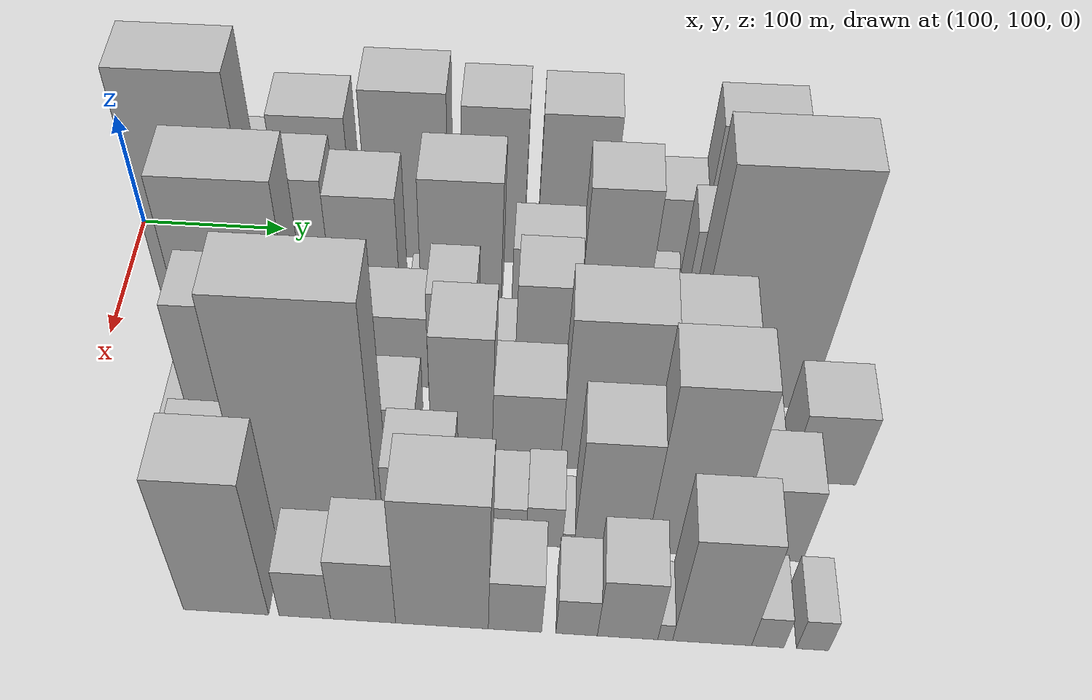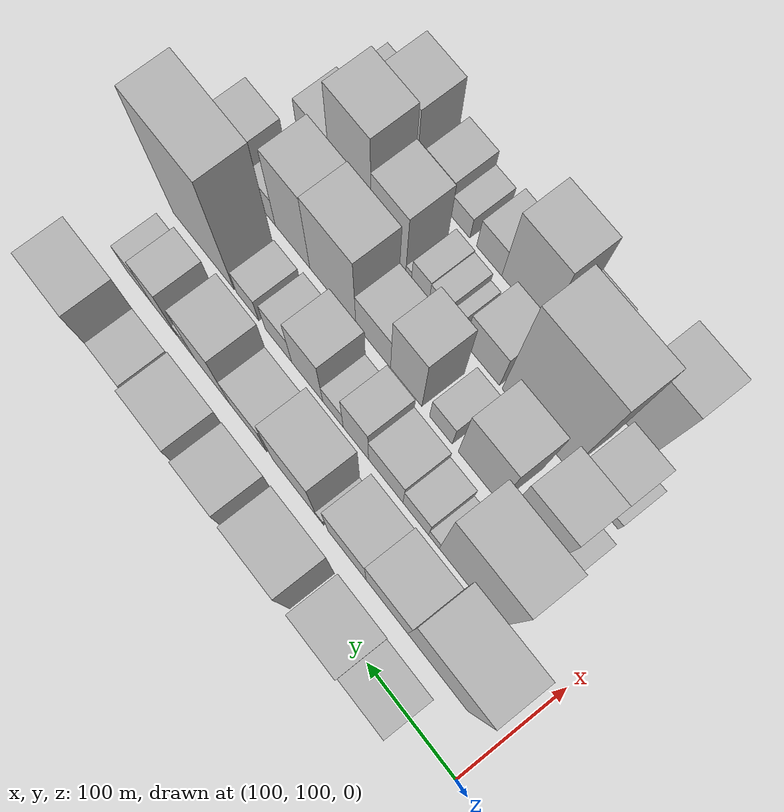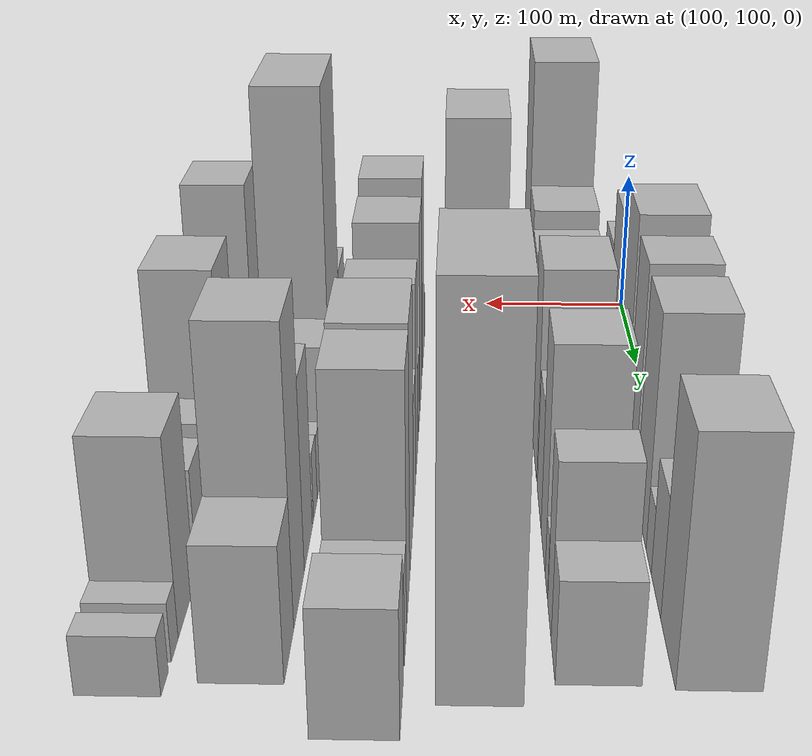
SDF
<sdf version="1.6">
 <world name="default">
  <model name="building_29">
   <static>1</static>
   <pose>100.0000 180.1995 0 0.000000 0.000000 0.000000</pose>
   <link name="link">
    <pose>0 0 43.50 0 0 0</pose>
    <collision name="collision"><geometry><box><size>40.0000 47.5425 87.0000</size></box></geometry></collision>
    <visual name="visual">
     <cast_shadows>0</cast_shadows>
     <geometry><box><size>40.0000 47.5425 87.0000</size></box></geometry>
     <material>
      <script>
       <uri>model://HANNAS_wall/materials/scripts</uri>
       <uri>model://HANNAS_wall/materials/textures</uri>
       <name>vrc/HANNAS_wall</name>
      </script>
     </material>
    </visual>
   </link>
  </model>
  <model name="building_30">
   <static>1</static>
   <pose>100.0000 228.5666 0 0.000000 0.000000 0.000000</pose>
   <link name="link">
    <pose>0 0 63.00 0 0 0</pose>
    <collision name="collision"><geometry><box><size>40.0000 49.1916 126.0000</size></box></geometry></collision>
    <visual name="visual">
     <cast_shadows>0</cast_shadows>
     <geometry><box><size>40.0000 49.1916 126.0000</size></box></geometry>
     <material>
      <script>
       <uri>model://HANNAS_wall/materials/scripts</uri>
       <uri>model://HANNAS_wall/materials/textures</uri>
       <name>vrc/HANNAS_wall</name>
      </script>
     </material>
    </visual>
   </link>
  </model>
  <model name="building_31">
   <static>1</static>
   <pose>100.0000 290.3817 0 0.000000 0.000000 0.000000</pose>
   <link name="link">
    <pose>0 0 75.00 0 0 0</pose>
    <collision name="collision"><geometry><box><size>40.0000 54.4385 150.0000</size></box></geometry></collision>
    <visual name="visual">
     <cast_shadows>0</cast_shadows>
     <geometry><box><size>40.0000 54.4385 150.0000</size></box></geometry>
     <material>
      <script>
       <uri>model://HANNAS_wall/materials/scripts</uri>
       <uri>model://HANNAS_wall/materials/textures</uri>
       <name>vrc/HANNAS_wall</name>
      </script>
     </material>
    </visual>
   </link>
  </model>
  <model name="building_32">
   <static>1</static>
   <pose>100.0000 347.7586 0 0.000000 0.000000 0.000000</pose>
   <link name="link">
    <pose>0 0 70.50 0 0 0</pose>
    <collision name="collision"><geometry><box><size>40.0000 42.3155 141.0000</size></box></geometry></collision>
    <visual name="visual">
     <cast_shadows>0</cast_shadows>
     <geometry><box><size>40.0000 42.3155 141.0000</size></box></geometry>
     <material>
      <script>
       <uri>model://HANNAS_wall/materials/scripts</uri>
       <uri>model://HANNAS_wall/materials/textures</uri>
       <name>vrc/HANNAS_wall</name>
      </script>
     </material>
    </visual>
   </link>
  </model>
  <model name="building_33">
   <static>1</static>
   <pose>100.0000 402.1196 0 0.000000 0.000000 0.000000</pose>
   <link name="link">
    <pose>0 0 69.00 0 0 0</pose>
    <collision name="collision"><geometry><box><size>40.0000 48.4064 138.0000</size></box></geometry></collision>
    <visual name="visual">
     <cast_shadows>0</cast_shadows>
     <geometry><box><size>40.0000 48.4064 138.0000</size></box></geometry>
     <material>
      <script>
       <uri>model://HANNAS_wall/materials/scripts</uri>
       <uri>model://HANNAS_wall/materials/textures</uri>
       <name>vrc/HANNAS_wall</name>
      </script>
     </material>
    </visual>
   </link>
  </model>
  <model name="building_34">
   <static>1</static>
   <pose>100.0000 437.7111 0 0.000000 0.000000 0.000000</pose>
   <link name="link">
    <pose>0 0 19.50 0 0 0</pose>
    <collision name="collision"><geometry><box><size>40.0000 22.7765 39.0000</size></box></geometry></collision>
    <visual name="visual">
     <cast_shadows>0</cast_shadows>
     <geometry><box><size>40.0000 22.7765 39.0000</size></box></geometry>
     <material>
      <script>
       <uri>model://HANNAS_wall/materials/scripts</uri>
       <uri>model://HANNAS_wall/materials/textures</uri>
       <name>vrc/HANNAS_wall</name>
      </script>
     </material>
    </visual>
   </link>
  </model>
  <model name="building_35">
   <static>1</static>
   <pose>100.0000 468.4505 0 0.000000 0.000000 0.000000</pose>
   <link name="link">
    <pose>0 0 34.50 0 0 0</pose>
    <collision name="collision"><geometry><box><size>40.0000 38.7024 69.0000</size></box></geometry></collision>
    <visual name="visual">
     <cast_shadows>0</cast_shadows>
     <geometry><box><size>40.0000 38.7024 69.0000</size></box></geometry>
     <material>
      <script>
       <uri>model://HANNAS_wall/materials/scripts</uri>
       <uri>model://HANNAS_wall/materials/textures</uri>
       <name>vrc/HANNAS_wall</name>
      </script>
     </material>
    </visual>
   </link>
  </model>
  <model name="building_36">
   <static>1</static>
   <pose>100.0000 514.6712 0 0.000000 0.000000 0.000000</pose>
   <link name="link">
    <pose>0 0 67.50 0 0 0</pose>
    <collision name="collision"><geometry><box><size>40.0000 53.7389 135.0000</size></box></geometry></collision>
    <visual name="visual">
     <cast_shadows>0</cast_shadows>
     <geometry><box><size>40.0000 53.7389 135.0000</size></box></geometry>
     <material>
      <script>
       <uri>model://HANNAS_wall/materials/scripts</uri>
       <uri>model://HANNAS_wall/materials/textures</uri>
       <name>vrc/HANNAS_wall</name>
      </script>
     </material>
    </visual>
   </link>
  </model>
  <model name="building_75">
   <static>1</static>
   <pose>155.0000 164.4124 0 0.000000 0.000000 0.000000</pose>
   <link name="link">
    <pose>0 0 103.50 0 0 0</pose>
    <collision name="collision"><geometry><box><size>40.0000 67.5657 207.0000</size></box></geometry></collision>
    <visual name="visual">
     <cast_shadows>0</cast_shadows>
     <geometry><box><size>40.0000 67.5657 207.0000</size></box></geometry>
     <material>
      <script>
       <uri>model://HANNAS_wall/materials/scripts</uri>
       <uri>model://HANNAS_wall/materials/textures</uri>
       <name>vrc/HANNAS_wall</name>
      </script>
     </material>
    </visual>
   </link>
  </model>
  <model name="building_76">
   <static>1</static>
   <pose>155.0000 221.9560 0 0.000000 0.000000 0.000000</pose>
   <link name="link">
    <pose>0 0 63.00 0 0 0</pose>
    <collision name="collision"><geometry><box><size>40.0000 47.5215 126.0000</size></box></geometry></collision>
    <visual name="visual">
     <cast_shadows>0</cast_shadows>
     <geometry><box><size>40.0000 47.5215 126.0000</size></box></geometry>
     <material>
      <script>
       <uri>model://HANNAS_wall/materials/scripts</uri>
       <uri>model://HANNAS_wall/materials/textures</uri>
       <name>vrc/HANNAS_wall</name>
      </script>
     </material>
    </visual>
   </link>
  </model>
  <model name="building_77">
   <static>1</static>
   <pose>155.0000 268.0033 0 0.000000 0.000000 0.000000</pose>
   <link name="link">
    <pose>0 0 57.00 0 0 0</pose>
    <collision name="collision"><geometry><box><size>40.0000 44.5732 114.0000</size></box></geometry></collision>
    <visual name="visual">
     <cast_shadows>0</cast_shadows>
     <geometry><box><size>40.0000 44.5732 114.0000</size></box></geometry>
     <material>
      <script>
       <uri>model://HANNAS_wall/materials/scripts</uri>
       <uri>model://HANNAS_wall/materials/textures</uri>
       <name>vrc/HANNAS_wall</name>
      </script>
     </material>
    </visual>
   </link>
  </model>
  <model name="building_78">
   <static>1</static>
   <pose>155.0000 299.6973 0 0.000000 0.000000 0.000000</pose>
   <link name="link">
    <pose>0 0 10.50 0 0 0</pose>
    <collision name="collision"><geometry><box><size>40.0000 8.8148 21.0000</size></box></geometry></collision>
    <visual name="visual">
     <cast_shadows>0</cast_shadows>
     <geometry><box><size>40.0000 8.8148 21.0000</size></box></geometry>
     <material>
      <script>
       <uri>model://HANNAS_wall/materials/scripts</uri>
       <uri>model://HANNAS_wall/materials/textures</uri>
       <name>vrc/HANNAS_wall</name>
      </script>
     </material>
    </visual>
   </link>
  </model>
  <model name="building_79">
   <static>1</static>
   <pose>155.0000 330.1746 0 0.000000 0.000000 0.000000</pose>
   <link name="link">
    <pose>0 0 66.00 0 0 0</pose>
    <collision name="collision"><geometry><box><size>40.0000 52.1398 132.0000</size></box></geometry></collision>
    <visual name="visual">
     <cast_shadows>0</cast_shadows>
     <geometry><box><size>40.0000 52.1398 132.0000</size></box></geometry>
     <material>
      <script>
       <uri>model://HANNAS_wall/materials/scripts</uri>
       <uri>model://HANNAS_wall/materials/textures</uri>
       <name>vrc/HANNAS_wall</name>
      </script>
     </material>
    </visual>
   </link>
  </model>
  <model name="building_80">
   <static>1</static>
   <pose>155.0000 385.5534 0 0.000000 0.000000 0.000000</pose>
   <link name="link">
    <pose>0 0 37.50 0 0 0</pose>
    <collision name="collision"><geometry><box><size>40.0000 44.6178 75.0000</size></box></geometry></collision>
    <visual name="visual">
     <cast_shadows>0</cast_shadows>
     <geometry><box><size>40.0000 44.6178 75.0000</size></box></geometry>
     <material>
      <script>
       <uri>model://HANNAS_wall/materials/scripts</uri>
       <uri>model://HANNAS_wall/materials/textures</uri>
       <name>vrc/HANNAS_wall</name>
      </script>
     </material>
    </visual>
   </link>
  </model>
  <model name="building_81">
   <static>1</static>
   <pose>155.0000 429.4478 0 0.000000 0.000000 0.000000</pose>
   <link name="link">
    <pose>0 0 66.00 0 0 0</pose>
    <collision name="collision"><geometry><box><size>40.0000 43.1711 132.0000</size></box></geometry></collision>
    <visual name="visual">
     <cast_shadows>0</cast_shadows>
     <geometry><box><size>40.0000 43.1711 132.0000</size></box></geometry>
     <material>
      <script>
       <uri>model://HANNAS_wall/materials/scripts</uri>
       <uri>model://HANNAS_wall/materials/textures</uri>
       <name>vrc/HANNAS_wall</name>
      </script>
     </material>
    </visual>
   </link>
  </model>
  <model name="building_82">
   <static>1</static>
   <pose>155.0000 461.4262 0 0.000000 0.000000 0.000000</pose>
   <link name="link">
    <pose>0 0 18.00 0 0 0</pose>
    <collision name="collision"><geometry><box><size>40.0000 20.7857 36.0000</size></box></geometry></collision>
    <visual name="visual">
     <cast_shadows>0</cast_shadows>
     <geometry><box><size>40.0000 20.7857 36.0000</size></box></geometry>
     <material>
      <script>
       <uri>model://HANNAS_wall/materials/scripts</uri>
       <uri>model://HANNAS_wall/materials/textures</uri>
       <name>vrc/HANNAS_wall</name>
      </script>
     </material>
    </visual>
   </link>
  </model>
  <model name="building_83">
   <static>1</static>
   <pose>155.0000 490.3712 0 0.000000 0.000000 0.000000</pose>
   <link name="link">
    <pose>0 0 49.50 0 0 0</pose>
    <collision name="collision"><geometry><box><size>40.0000 31.1045 99.0000</size></box></geometry></collision>
    <visual name="visual">
     <cast_shadows>0</cast_shadows>
     <geometry><box><size>40.0000 31.1045 99.0000</size></box></geometry>
     <material>
      <script>
       <uri>model://HANNAS_wall/materials/scripts</uri>
       <uri>model://HANNAS_wall/materials/textures</uri>
       <name>vrc/HANNAS_wall</name>
      </script>
     </material>
    </visual>
   </link>
  </model>
  <model name="building_84">
   <static>1</static>
   <pose>155.0000 522.3823 0 0.000000 0.000000 0.000000</pose>
   <link name="link">
    <pose>0 0 28.50 0 0 0</pose>
    <collision name="collision"><geometry><box><size>40.0000 32.9177 57.0000</size></box></geometry></collision>
    <visual name="visual">
     <cast_shadows>0</cast_shadows>
     <geometry><box><size>40.0000 32.9177 57.0000</size></box></geometry>
     <material>
      <script>
       <uri>model://HANNAS_wall/materials/scripts</uri>
       <uri>model://HANNAS_wall/materials/textures</uri>
       <name>vrc/HANNAS_wall</name>
      </script>
     </material>
    </visual>
   </link>
  </model>
  <model name="building_125">
   <static>1</static>
   <pose>210.0000 196.2581 0 0.000000 0.000000 0.000000</pose>
   <link name="link">
    <pose>0 0 90.00 0 0 0</pose>
    <collision name="collision"><geometry><box><size>40.0000 69.4284 180.0000</size></box></geometry></collision>
    <visual name="visual">
     <cast_shadows>0</cast_shadows>
     <geometry><box><size>40.0000 69.4284 180.0000</size></box></geometry>
     <material>
      <script>
       <uri>model://HANNAS_wall/materials/scripts</uri>
       <uri>model://HANNAS_wall/materials/textures</uri>
       <name>vrc/HANNAS_wall</name>
      </script>
     </material>
    </visual>
   </link>
  </model>
  <model name="building_126">
   <static>1</static>
   <pose>210.0000 237.1625 0 0.000000 0.000000 0.000000</pose>
   <link name="link">
    <pose>0 0 13.50 0 0 0</pose>
    <collision name="collision"><geometry><box><size>40.0000 12.3806 27.0000</size></box></geometry></collision>
    <visual name="visual">
     <cast_shadows>0</cast_shadows>
     <geometry><box><size>40.0000 12.3806 27.0000</size></box></geometry>
     <material>
      <script>
       <uri>model://HANNAS_wall/materials/scripts</uri>
       <uri>model://HANNAS_wall/materials/textures</uri>
       <name>vrc/HANNAS_wall</name>
      </script>
     </material>
    </visual>
   </link>
  </model>
  <model name="building_127">
   <static>1</static>
   <pose>210.0000 258.1471 0 0.000000 0.000000 0.000000</pose>
   <link name="link">
    <pose>0 0 27.00 0 0 0</pose>
    <collision name="collision"><geometry><box><size>40.0000 29.5886 54.0000</size></box></geometry></collision>
    <visual name="visual">
     <cast_shadows>0</cast_shadows>
     <geometry><box><size>40.0000 29.5886 54.0000</size></box></geometry>
     <material>
      <script>
       <uri>model://HANNAS_wall/materials/scripts</uri>
       <uri>model://HANNAS_wall/materials/textures</uri>
       <name>vrc/HANNAS_wall</name>
      </script>
     </material>
    </visual>
   </link>
  </model>
  <model name="building_128">
   <static>1</static>
   <pose>210.0000 293.1214 0 0.000000 0.000000 0.000000</pose>
   <link name="link">
    <pose>0 0 34.50 0 0 0</pose>
    <collision name="collision"><geometry><box><size>40.0000 40.3600 69.0000</size></box></geometry></collision>
    <visual name="visual">
     <cast_shadows>0</cast_shadows>
     <geometry><box><size>40.0000 40.3600 69.0000</size></box></geometry>
     <material>
      <script>
       <uri>model://HANNAS_wall/materials/scripts</uri>
       <uri>model://HANNAS_wall/materials/textures</uri>
       <name>vrc/HANNAS_wall</name>
      </script>
     </material>
    </visual>
   </link>
  </model>
  <model name="building_129">
   <static>1</static>
   <pose>210.0000 328.3047 0 0.000000 0.000000 0.000000</pose>
   <link name="link">
    <pose>0 0 46.50 0 0 0</pose>
    <collision name="collision"><geometry><box><size>40.0000 30.0066 93.0000</size></box></geometry></collision>
    <visual name="visual">
     <cast_shadows>0</cast_shadows>
     <geometry><box><size>40.0000 30.0066 93.0000</size></box></geometry>
     <material>
      <script>
       <uri>model://HANNAS_wall/materials/scripts</uri>
       <uri>model://HANNAS_wall/materials/textures</uri>
       <name>vrc/HANNAS_wall</name>
      </script>
     </material>
    </visual>
   </link>
  </model>
  <model name="building_130">
   <static>1</static>
   <pose>210.0000 355.5688 0 0.000000 0.000000 0.000000</pose>
   <link name="link">
    <pose>0 0 22.50 0 0 0</pose>
    <collision name="collision"><geometry><box><size>40.0000 24.5215 45.0000</size></box></geometry></collision>
    <visual name="visual">
     <cast_shadows>0</cast_shadows>
     <geometry><box><size>40.0000 24.5215 45.0000</size></box></geometry>
     <material>
      <script>
       <uri>model://HANNAS_wall/materials/scripts</uri>
       <uri>model://HANNAS_wall/materials/textures</uri>
       <name>vrc/HANNAS_wall</name>
      </script>
     </material>
    </visual>
   </link>
  </model>
  <model name="building_131">
   <static>1</static>
   <pose>210.0000 386.7142 0 0.000000 0.000000 0.000000</pose>
   <link name="link">
    <pose>0 0 52.50 0 0 0</pose>
    <collision name="collision"><geometry><box><size>40.0000 37.7694 105.0000</size></box></geometry></collision>
    <visual name="visual">
     <cast_shadows>0</cast_shadows>
     <geometry><box><size>40.0000 37.7694 105.0000</size></box></geometry>
     <material>
      <script>
       <uri>model://HANNAS_wall/materials/scripts</uri>
       <uri>model://HANNAS_wall/materials/textures</uri>
       <name>vrc/HANNAS_wall</name>
      </script>
     </material>
    </visual>
   </link>
  </model>
  <model name="building_132">
   <static>1</static>
   <pose>210.0000 421.9209 0 0.000000 0.000000 0.000000</pose>
   <link name="link">
    <pose>0 0 30.00 0 0 0</pose>
    <collision name="collision"><geometry><box><size>40.0000 32.6440 60.0000</size></box></geometry></collision>
    <visual name="visual">
     <cast_shadows>0</cast_shadows>
     <geometry><box><size>40.0000 32.6440 60.0000</size></box></geometry>
     <material>
      <script>
       <uri>model://HANNAS_wall/materials/scripts</uri>
       <uri>model://HANNAS_wall/materials/textures</uri>
       <name>vrc/HANNAS_wall</name>
      </script>
     </material>
    </visual>
   </link>
  </model>
  <model name="building_133">
   <static>1</static>
   <pose>210.0000 460.1486 0 0.000000 0.000000 0.000000</pose>
   <link name="link">
    <pose>0 0 24.00 0 0 0</pose>
    <collision name="collision"><geometry><box><size>40.0000 27.8114 48.0000</size></box></geometry></collision>
    <visual name="visual">
     <cast_shadows>0</cast_shadows>
     <geometry><box><size>40.0000 27.8114 48.0000</size></box></geometry>
     <material>
      <script>
       <uri>model://HANNAS_wall/materials/scripts</uri>
       <uri>model://HANNAS_wall/materials/textures</uri>
       <name>vrc/HANNAS_wall</name>
      </script>
     </material>
    </visual>
   </link>
  </model>
  <model name="building_134">
   <static>1</static>
   <pose>210.0000 515.7684 0 0.000000 0.000000 0.000000</pose>
   <link name="link">
    <pose>0 0 105.00 0 0 0</pose>
    <collision name="collision"><geometry><box><size>40.0000 77.4281 210.0000</size></box></geometry></collision>
    <visual name="visual">
     <cast_shadows>0</cast_shadows>
     <geometry><box><size>40.0000 77.4281 210.0000</size></box></geometry>
     <material>
      <script>
       <uri>model://HANNAS_wall/materials/scripts</uri>
       <uri>model://HANNAS_wall/materials/textures</uri>
       <name>vrc/HANNAS_wall</name>
      </script>
     </material>
    </visual>
   </link>
  </model>
  <model name="building_173">
   <static>1</static>
   <pose>265.0000 165.2890 0 0.000000 0.000000 0.000000</pose>
   <link name="link">
    <pose>0 0 16.50 0 0 0</pose>
    <collision name="collision"><geometry><box><size>40.0000 18.0184 33.0000</size></box></geometry></collision>
    <visual name="visual">
     <cast_shadows>0</cast_shadows>
     <geometry><box><size>40.0000 18.0184 33.0000</size></box></geometry>
     <material>
      <script>
       <uri>model://HANNAS_wall/materials/scripts</uri>
       <uri>model://HANNAS_wall/materials/textures</uri>
       <name>vrc/HANNAS_wall</name>
      </script>
     </material>
    </visual>
   </link>
  </model>
  <model name="building_174">
   <static>1</static>
   <pose>265.0000 197.8788 0 0.000000 0.000000 0.000000</pose>
   <link name="link">
    <pose>0 0 69.00 0 0 0</pose>
    <collision name="collision"><geometry><box><size>40.0000 47.1612 138.0000</size></box></geometry></collision>
    <visual name="visual">
     <cast_shadows>0</cast_shadows>
     <geometry><box><size>40.0000 47.1612 138.0000</size></box></geometry>
     <material>
      <script>
       <uri>model://HANNAS_wall/materials/scripts</uri>
       <uri>model://HANNAS_wall/materials/textures</uri>
       <name>vrc/HANNAS_wall</name>
      </script>
     </material>
    </visual>
   </link>
  </model>
  <model name="building_175">
   <static>1</static>
   <pose>265.0000 253.4279 0 0.000000 0.000000 0.000000</pose>
   <link name="link">
    <pose>0 0 64.50 0 0 0</pose>
    <collision name="collision"><geometry><box><size>40.0000 47.9370 129.0000</size></box></geometry></collision>
    <visual name="visual">
     <cast_shadows>0</cast_shadows>
     <geometry><box><size>40.0000 47.9370 129.0000</size></box></geometry>
     <material>
      <script>
       <uri>model://HANNAS_wall/materials/scripts</uri>
       <uri>model://HANNAS_wall/materials/textures</uri>
       <name>vrc/HANNAS_wall</name>
      </script>
     </material>
    </visual>
   </link>
  </model>
  <model name="building_176">
   <static>1</static>
   <pose>265.0000 297.6875 0 0.000000 0.000000 0.000000</pose>
   <link name="link">
    <pose>0 0 25.50 0 0 0</pose>
    <collision name="collision"><geometry><box><size>40.0000 26.5822 51.0000</size></box></geometry></collision>
    <visual name="visual">
     <cast_shadows>0</cast_shadows>
     <geometry><box><size>40.0000 26.5822 51.0000</size></box></geometry>
     <material>
      <script>
       <uri>model://HANNAS_wall/materials/scripts</uri>
       <uri>model://HANNAS_wall/materials/textures</uri>
       <name>vrc/HANNAS_wall</name>
      </script>
     </material>
    </visual>
   </link>
  </model>
  <model name="building_177">
   <static>1</static>
   <pose>265.0000 338.5309 0 0.000000 0.000000 0.000000</pose>
   <link name="link">
    <pose>0 0 61.50 0 0 0</pose>
    <collision name="collision"><geometry><box><size>40.0000 37.1047 123.0000</size></box></geometry></collision>
    <visual name="visual">
     <cast_shadows>0</cast_shadows>
     <geometry><box><size>40.0000 37.1047 123.0000</size></box></geometry>
     <material>
      <script>
       <uri>model://HANNAS_wall/materials/scripts</uri>
       <uri>model://HANNAS_wall/materials/textures</uri>
       <name>vrc/HANNAS_wall</name>
      </script>
     </material>
    </visual>
   </link>
  </model>
  <model name="building_178">
   <static>1</static>
   <pose>265.0000 377.9351 0 0.000000 0.000000 0.000000</pose>
   <link name="link">
    <pose>0 0 36.00 0 0 0</pose>
    <collision name="collision"><geometry><box><size>40.0000 41.7037 72.0000</size></box></geometry></collision>
    <visual name="visual">
     <cast_shadows>0</cast_shadows>
     <geometry><box><size>40.0000 41.7037 72.0000</size></box></geometry>
     <material>
      <script>
       <uri>model://HANNAS_wall/materials/scripts</uri>
       <uri>model://HANNAS_wall/materials/textures</uri>
       <name>vrc/HANNAS_wall</name>
      </script>
     </material>
    </visual>
   </link>
  </model>
  <model name="building_179">
   <static>1</static>
   <pose>265.0000 427.0764 0 0.000000 0.000000 0.000000</pose>
   <link name="link">
    <pose>0 0 72.00 0 0 0</pose>
    <collision name="collision"><geometry><box><size>40.0000 56.5790 144.0000</size></box></geometry></collision>
    <visual name="visual">
     <cast_shadows>0</cast_shadows>
     <geometry><box><size>40.0000 56.5790 144.0000</size></box></geometry>
     <material>
      <script>
       <uri>model://HANNAS_wall/materials/scripts</uri>
       <uri>model://HANNAS_wall/materials/textures</uri>
       <name>vrc/HANNAS_wall</name>
      </script>
     </material>
    </visual>
   </link>
  </model>
  <model name="building_180">
   <static>1</static>
   <pose>265.0000 476.9958 0 0.000000 0.000000 0.000000</pose>
   <link name="link">
    <pose>0 0 70.50 0 0 0</pose>
    <collision name="collision"><geometry><box><size>40.0000 43.2598 141.0000</size></box></geometry></collision>
    <visual name="visual">
     <cast_shadows>0</cast_shadows>
     <geometry><box><size>40.0000 43.2598 141.0000</size></box></geometry>
     <material>
      <script>
       <uri>model://HANNAS_wall/materials/scripts</uri>
       <uri>model://HANNAS_wall/materials/textures</uri>
       <name>vrc/HANNAS_wall</name>
      </script>
     </material>
    </visual>
   </link>
  </model>
  <model name="building_181">
   <static>1</static>
   <pose>265.0000 512.8519 0 0.000000 0.000000 0.000000</pose>
   <link name="link">
    <pose>0 0 25.50 0 0 0</pose>
    <collision name="collision"><geometry><box><size>40.0000 28.4522 51.0000</size></box></geometry></collision>
    <visual name="visual">
     <cast_shadows>0</cast_shadows>
     <geometry><box><size>40.0000 28.4522 51.0000</size></box></geometry>
     <material>
      <script>
       <uri>model://HANNAS_wall/materials/scripts</uri>
       <uri>model://HANNAS_wall/materials/textures</uri>
       <name>vrc/HANNAS_wall</name>
      </script>
     </material>
    </visual>
   </link>
  </model>
  <model name="building_182">
   <static>1</static>
   <pose>265.0000 557.6159 0 0.000000 0.000000 0.000000</pose>
   <link name="link">
    <pose>0 0 34.50 0 0 0</pose>
    <collision name="collision"><geometry><box><size>40.0000 41.0759 69.0000</size></box></geometry></collision>
    <visual name="visual">
     <cast_shadows>0</cast_shadows>
     <geometry><box><size>40.0000 41.0759 69.0000</size></box></geometry>
     <material>
      <script>
       <uri>model://HANNAS_wall/materials/scripts</uri>
       <uri>model://HANNAS_wall/materials/textures</uri>
       <name>vrc/HANNAS_wall</name>
      </script>
     </material>
    </visual>
   </link>
  </model>
  <model name="building_224">
   <static>1</static>
   <pose>320.0000 166.8642 0 0.000000 0.000000 0.000000</pose>
   <link name="link">
    <pose>0 0 10.50 0 0 0</pose>
    <collision name="collision"><geometry><box><size>40.0000 9.3326 21.0000</size></box></geometry></collision>
    <visual name="visual">
     <cast_shadows>0</cast_shadows>
     <geometry><box><size>40.0000 9.3326 21.0000</size></box></geometry>
     <material>
      <script>
       <uri>model://HANNAS_wall/materials/scripts</uri>
       <uri>model://HANNAS_wall/materials/textures</uri>
       <name>vrc/HANNAS_wall</name>
      </script>
     </material>
    </visual>
   </link>
  </model>
  <model name="building_225">
   <static>1</static>
   <pose>320.0000 192.6631 0 0.000000 0.000000 0.000000</pose>
   <link name="link">
    <pose>0 0 36.00 0 0 0</pose>
    <collision name="collision"><geometry><box><size>40.0000 42.2653 72.0000</size></box></geometry></collision>
    <visual name="visual">
     <cast_shadows>0</cast_shadows>
     <geometry><box><size>40.0000 42.2653 72.0000</size></box></geometry>
     <material>
      <script>
       <uri>model://HANNAS_wall/materials/scripts</uri>
       <uri>model://HANNAS_wall/materials/textures</uri>
       <name>vrc/HANNAS_wall</name>
      </script>
     </material>
    </visual>
   </link>
  </model>
  <model name="building_226">
   <static>1</static>
   <pose>320.0000 255.4038 0 0.000000 0.000000 0.000000</pose>
   <link name="link">
    <pose>0 0 108.00 0 0 0</pose>
    <collision name="collision"><geometry><box><size>40.0000 77.2161 216.0000</size></box></geometry></collision>
    <visual name="visual">
     <cast_shadows>0</cast_shadows>
     <geometry><box><size>40.0000 77.2161 216.0000</size></box></geometry>
     <material>
      <script>
       <uri>model://HANNAS_wall/materials/scripts</uri>
       <uri>model://HANNAS_wall/materials/textures</uri>
       <name>vrc/HANNAS_wall</name>
      </script>
     </material>
    </visual>
   </link>
  </model>
  <model name="building_227">
   <static>1</static>
   <pose>320.0000 317.2679 0 0.000000 0.000000 0.000000</pose>
   <link name="link">
    <pose>0 0 37.50 0 0 0</pose>
    <collision name="collision"><geometry><box><size>40.0000 40.5120 75.0000</size></box></geometry></collision>
    <visual name="visual">
     <cast_shadows>0</cast_shadows>
     <geometry><box><size>40.0000 40.5120 75.0000</size></box></geometry>
     <material>
      <script>
       <uri>model://HANNAS_wall/materials/scripts</uri>
       <uri>model://HANNAS_wall/materials/textures</uri>
       <name>vrc/HANNAS_wall</name>
      </script>
     </material>
    </visual>
   </link>
  </model>
  <model name="building_228">
   <static>1</static>
   <pose>320.0000 353.3373 0 0.000000 0.000000 0.000000</pose>
   <link name="link">
    <pose>0 0 12.00 0 0 0</pose>
    <collision name="collision"><geometry><box><size>40.0000 11.6269 24.0000</size></box></geometry></collision>
    <visual name="visual">
     <cast_shadows>0</cast_shadows>
     <geometry><box><size>40.0000 11.6269 24.0000</size></box></geometry>
     <material>
      <script>
       <uri>model://HANNAS_wall/materials/scripts</uri>
       <uri>model://HANNAS_wall/materials/textures</uri>
       <name>vrc/HANNAS_wall</name>
      </script>
     </material>
    </visual>
   </link>
  </model>
  <model name="building_229">
   <static>1</static>
   <pose>320.0000 369.5855 0 0.000000 0.000000 0.000000</pose>
   <link name="link">
    <pose>0 0 19.50 0 0 0</pose>
    <collision name="collision"><geometry><box><size>40.0000 20.8694 39.0000</size></box></geometry></collision>
    <visual name="visual">
     <cast_shadows>0</cast_shadows>
     <geometry><box><size>40.0000 20.8694 39.0000</size></box></geometry>
     <material>
      <script>
       <uri>model://HANNAS_wall/materials/scripts</uri>
       <uri>model://HANNAS_wall/materials/textures</uri>
       <name>vrc/HANNAS_wall</name>
      </script>
     </material>
    </visual>
   </link>
  </model>
  <model name="building_230">
   <static>1</static>
   <pose>320.0000 390.7105 0 0.000000 0.000000 0.000000</pose>
   <link name="link">
    <pose>0 0 21.00 0 0 0</pose>
    <collision name="collision"><geometry><box><size>40.0000 21.3807 42.0000</size></box></geometry></collision>
    <visual name="visual">
     <cast_shadows>0</cast_shadows>
     <geometry><box><size>40.0000 21.3807 42.0000</size></box></geometry>
     <material>
      <script>
       <uri>model://HANNAS_wall/materials/scripts</uri>
       <uri>model://HANNAS_wall/materials/textures</uri>
       <name>vrc/HANNAS_wall</name>
      </script>
     </material>
    </visual>
   </link>
  </model>
  <model name="building_231">
   <static>1</static>
   <pose>320.0000 404.8885 0 0.000000 0.000000 0.000000</pose>
   <link name="link">
    <pose>0 0 7.50 0 0 0</pose>
    <collision name="collision"><geometry><box><size>40.0000 6.9754 15.0000</size></box></geometry></collision>
    <visual name="visual">
     <cast_shadows>0</cast_shadows>
     <geometry><box><size>40.0000 6.9754 15.0000</size></box></geometry>
     <material>
      <script>
       <uri>model://HANNAS_wall/materials/scripts</uri>
       <uri>model://HANNAS_wall/materials/textures</uri>
       <name>vrc/HANNAS_wall</name>
      </script>
     </material>
    </visual>
   </link>
  </model>
  <model name="building_232">
   <static>1</static>
   <pose>320.0000 429.5164 0 0.000000 0.000000 0.000000</pose>
   <link name="link">
    <pose>0 0 55.50 0 0 0</pose>
    <collision name="collision"><geometry><box><size>40.0000 42.2803 111.0000</size></box></geometry></collision>
    <visual name="visual">
     <cast_shadows>0</cast_shadows>
     <geometry><box><size>40.0000 42.2803 111.0000</size></box></geometry>
     <material>
      <script>
       <uri>model://HANNAS_wall/materials/scripts</uri>
       <uri>model://HANNAS_wall/materials/textures</uri>
       <name>vrc/HANNAS_wall</name>
      </script>
     </material>
    </visual>
   </link>
  </model>
  <model name="building_233">
   <static>1</static>
   <pose>320.0000 475.4812 0 0.000000 0.000000 0.000000</pose>
   <link name="link">
    <pose>0 0 82.50 0 0 0</pose>
    <collision name="collision"><geometry><box><size>40.0000 49.6494 165.0000</size></box></geometry></collision>
    <visual name="visual">
     <cast_shadows>0</cast_shadows>
     <geometry><box><size>40.0000 49.6494 165.0000</size></box></geometry>
     <material>
      <script>
       <uri>model://HANNAS_wall/materials/scripts</uri>
       <uri>model://HANNAS_wall/materials/textures</uri>
       <name>vrc/HANNAS_wall</name>
      </script>
     </material>
    </visual>
   </link>
  </model>
  <model name="building_234">
   <static>1</static>
   <pose>320.0000 520.8911 0 0.000000 0.000000 0.000000</pose>
   <link name="link">
    <pose>0 0 37.50 0 0 0</pose>
    <collision name="collision"><geometry><box><size>40.0000 41.1704 75.0000</size></box></geometry></collision>
    <visual name="visual">
     <cast_shadows>0</cast_shadows>
     <geometry><box><size>40.0000 41.1704 75.0000</size></box></geometry>
     <material>
      <script>
       <uri>model://HANNAS_wall/materials/scripts</uri>
       <uri>model://HANNAS_wall/materials/textures</uri>
       <name>vrc/HANNAS_wall</name>
      </script>
     </material>
    </visual>
   </link>
  </model>
  <model name="building_281">
   <static>1</static>
   <pose>375.0000 212.3400 0 0.000000 0.000000 0.000000</pose>
   <link name="link">
    <pose>0 0 69.00 0 0 0</pose>
    <collision name="collision"><geometry><box><size>40.0000 48.7702 138.0000</size></box></geometry></collision>
    <visual name="visual">
     <cast_shadows>0</cast_shadows>
     <geometry><box><size>40.0000 48.7702 138.0000</size></box></geometry>
     <material>
      <script>
       <uri>model://HANNAS_wall/materials/scripts</uri>
       <uri>model://HANNAS_wall/materials/textures</uri>
       <name>vrc/HANNAS_wall</name>
      </script>
     </material>
    </visual>
   </link>
  </model>
  <model name="building_282">
   <static>1</static>
   <pose>375.0000 257.4295 0 0.000000 0.000000 0.000000</pose>
   <link name="link">
    <pose>0 0 25.50 0 0 0</pose>
    <collision name="collision"><geometry><box><size>40.0000 29.4087 51.0000</size></box></geometry></collision>
    <visual name="visual">
     <cast_shadows>0</cast_shadows>
     <geometry><box><size>40.0000 29.4087 51.0000</size></box></geometry>
     <material>
      <script>
       <uri>model://HANNAS_wall/materials/scripts</uri>
       <uri>model://HANNAS_wall/materials/textures</uri>
       <name>vrc/HANNAS_wall</name>
      </script>
     </material>
    </visual>
   </link>
  </model>
  <model name="building_283">
   <static>1</static>
   <pose>375.0000 290.6103 0 0.000000 0.000000 0.000000</pose>
   <link name="link">
    <pose>0 0 33.00 0 0 0</pose>
    <collision name="collision"><geometry><box><size>40.0000 36.9529 66.0000</size></box></geometry></collision>
    <visual name="visual">
     <cast_shadows>0</cast_shadows>
     <geometry><box><size>40.0000 36.9529 66.0000</size></box></geometry>
     <material>
      <script>
       <uri>model://HANNAS_wall/materials/scripts</uri>
       <uri>model://HANNAS_wall/materials/textures</uri>
       <name>vrc/HANNAS_wall</name>
      </script>
     </material>
    </visual>
   </link>
  </model>
  <model name="building_284">
   <static>1</static>
   <pose>375.0000 335.2836 0 0.000000 0.000000 0.000000</pose>
   <link name="link">
    <pose>0 0 66.00 0 0 0</pose>
    <collision name="collision"><geometry><box><size>40.0000 52.3938 132.0000</size></box></geometry></collision>
    <visual name="visual">
     <cast_shadows>0</cast_shadows>
     <geometry><box><size>40.0000 52.3938 132.0000</size></box></geometry>
     <material>
      <script>
       <uri>model://HANNAS_wall/materials/scripts</uri>
       <uri>model://HANNAS_wall/materials/textures</uri>
       <name>vrc/HANNAS_wall</name>
      </script>
     </material>
    </visual>
   </link>
  </model>
  <model name="building_285">
   <static>1</static>
   <pose>375.0000 376.4917 0 0.000000 0.000000 0.000000</pose>
   <link name="link">
    <pose>0 0 27.00 0 0 0</pose>
    <collision name="collision"><geometry><box><size>40.0000 30.0224 54.0000</size></box></geometry></collision>
    <visual name="visual">
     <cast_shadows>0</cast_shadows>
     <geometry><box><size>40.0000 30.0224 54.0000</size></box></geometry>
     <material>
      <script>
       <uri>model://HANNAS_wall/materials/scripts</uri>
       <uri>model://HANNAS_wall/materials/textures</uri>
       <name>vrc/HANNAS_wall</name>
      </script>
     </material>
    </visual>
   </link>
  </model>
  <model name="building_286">
   <static>1</static>
   <pose>375.0000 411.1446 0 0.000000 0.000000 0.000000</pose>
   <link name="link">
    <pose>0 0 19.50 0 0 0</pose>
    <collision name="collision"><geometry><box><size>40.0000 23.2834 39.0000</size></box></geometry></collision>
    <visual name="visual">
     <cast_shadows>0</cast_shadows>
     <geometry><box><size>40.0000 23.2834 39.0000</size></box></geometry>
     <material>
      <script>
       <uri>model://HANNAS_wall/materials/scripts</uri>
       <uri>model://HANNAS_wall/materials/textures</uri>
       <name>vrc/HANNAS_wall</name>
      </script>
     </material>
    </visual>
   </link>
  </model>
  <model name="building_287">
   <static>1</static>
   <pose>375.0000 439.6750 0 0.000000 0.000000 0.000000</pose>
   <link name="link">
    <pose>0 0 31.50 0 0 0</pose>
    <collision name="collision"><geometry><box><size>40.0000 33.7773 63.0000</size></box></geometry></collision>
    <visual name="visual">
     <cast_shadows>0</cast_shadows>
     <geometry><box><size>40.0000 33.7773 63.0000</size></box></geometry>
     <material>
      <script>
       <uri>model://HANNAS_wall/materials/scripts</uri>
       <uri>model://HANNAS_wall/materials/textures</uri>
       <name>vrc/HANNAS_wall</name>
      </script>
     </material>
    </visual>
   </link>
  </model>
  <model name="building_288">
   <static>1</static>
   <pose>375.0000 460.6948 0 0.000000 0.000000 0.000000</pose>
   <link name="link">
    <pose>0 0 9.00 0 0 0</pose>
    <collision name="collision"><geometry><box><size>40.0000 8.2624 18.0000</size></box></geometry></collision>
    <visual name="visual">
     <cast_shadows>0</cast_shadows>
     <geometry><box><size>40.0000 8.2624 18.0000</size></box></geometry>
     <material>
      <script>
       <uri>model://HANNAS_wall/materials/scripts</uri>
       <uri>model://HANNAS_wall/materials/textures</uri>
       <name>vrc/HANNAS_wall</name>
      </script>
     </material>
    </visual>
   </link>
  </model>
  <model name="building_289">
   <static>1</static>
   <pose>375.0000 486.8163 0 0.000000 0.000000 0.000000</pose>
   <link name="link">
    <pose>0 0 55.50 0 0 0</pose>
    <collision name="collision"><geometry><box><size>40.0000 43.9807 111.0000</size></box></geometry></collision>
    <visual name="visual">
     <cast_shadows>0</cast_shadows>
     <geometry><box><size>40.0000 43.9807 111.0000</size></box></geometry>
     <material>
      <script>
       <uri>model://HANNAS_wall/materials/scripts</uri>
       <uri>model://HANNAS_wall/materials/textures</uri>
       <name>vrc/HANNAS_wall</name>
      </script>
     </material>
    </visual>
   </link>
  </model>
  <model name="building_290">
   <static>1</static>
   <pose>375.0000 517.7286 0 0.000000 0.000000 0.000000</pose>
   <link name="link">
    <pose>0 0 16.50 0 0 0</pose>
    <collision name="collision"><geometry><box><size>40.0000 17.8440 33.0000</size></box></geometry></collision>
    <visual name="visual">
     <cast_shadows>0</cast_shadows>
     <geometry><box><size>40.0000 17.8440 33.0000</size></box></geometry>
     <material>
      <script>
       <uri>model://HANNAS_wall/materials/scripts</uri>
       <uri>model://HANNAS_wall/materials/textures</uri>
       <name>vrc/HANNAS_wall</name>
      </script>
     </material>
    </visual>
   </link>
  </model>
  <model name="building_291">
   <static>1</static>
   <pose>375.0000 542.5658 0 0.000000 0.000000 0.000000</pose>
   <link name="link">
    <pose>0 0 16.50 0 0 0</pose>
    <collision name="collision"><geometry><box><size>40.0000 17.8304 33.0000</size></box></geometry></collision>
    <visual name="visual">
     <cast_shadows>0</cast_shadows>
     <geometry><box><size>40.0000 17.8304 33.0000</size></box></geometry>
     <material>
      <script>
       <uri>model://HANNAS_wall/materials/scripts</uri>
       <uri>model://HANNAS_wall/materials/textures</uri>
       <name>vrc/HANNAS_wall</name>
      </script>
     </material>
    </visual>
   </link>
  </model>
 </world>
</sdf>
